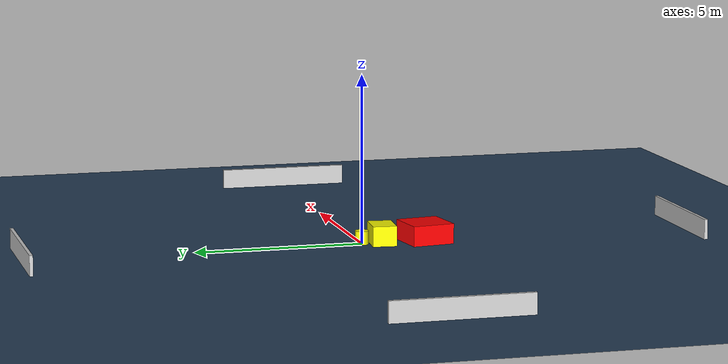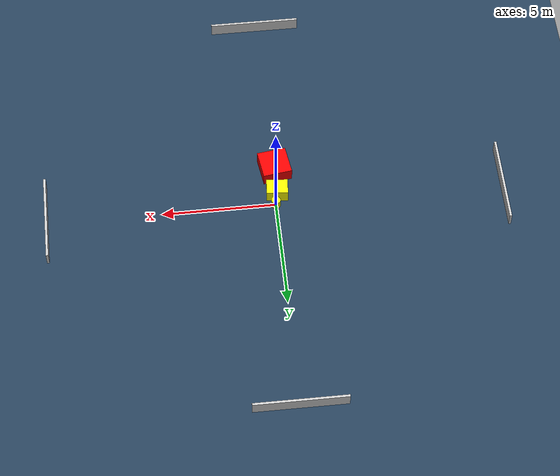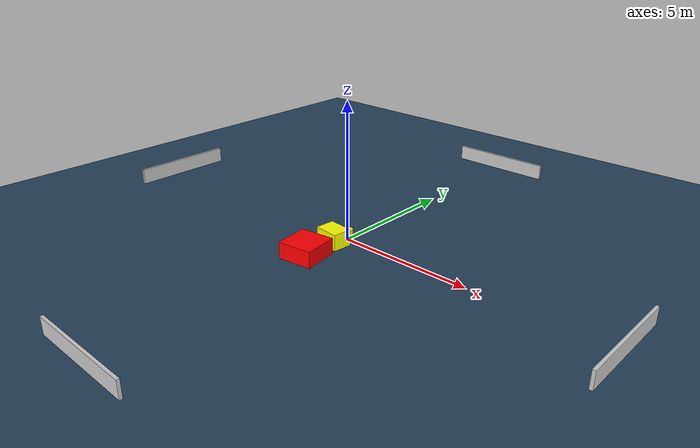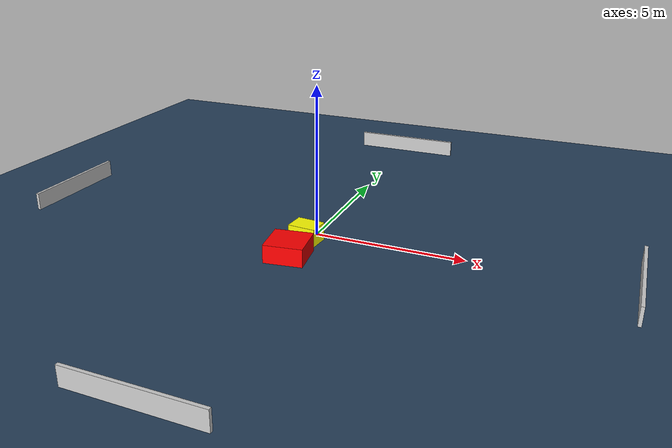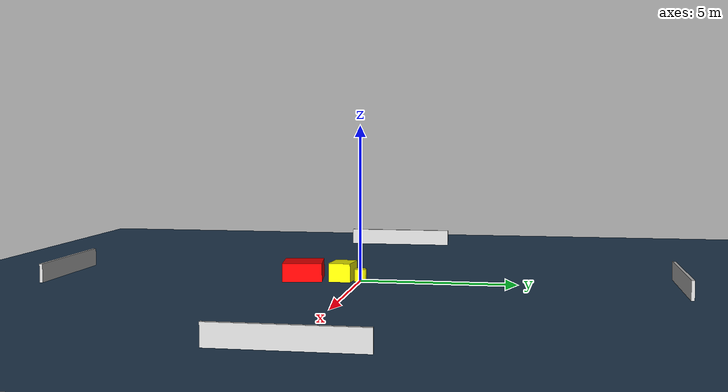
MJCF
<?xml version="1.0" ?>
<mujoco model="generated_environment">
  <option timestep="0.01" integrator="RK4" cone="elliptic"/>
  <default>
    <geom density="1"/>
  </default>
  <asset>
    <texture builtin="gradient" height="3072" name="skybox" rgb1="0.3 0.5 0.7" rgb2="0 0 0" type="skybox" width="512"/>
    <texture builtin="checker" height="300" name="groundplane" rgb1="0.2 0.3 0.4" rgb2="0.1 0.2 0.3" type="2d" width="300"/>
    <material name="groundplane" reflectance="0.2" texrepeat="5 5" texture="groundplane"/>
  </asset>
  <worldbody>
    <light dir="0 0 -1" directional="true" pos="0 0 1.5"/>
    <geom condim="3" friction="0.5 0.005 0.001" material="groundplane" name="floor" pos="0 0 0" size="0 0 0.05" type="plane"/>
    <body name="walls">
      <geom name="wall_1" condim="4" pos="-10.0 0.0 0.3" rgba="0.800000011920929 0.800000011920929 0.800000011920929 1.0" size="0.05 2.0 0.3" type="box"/>
      <geom name="wall_2" condim="4" pos="10.0 0.0 0.3" rgba="0.800000011920929 0.800000011920929 0.800000011920929 1.0" size="0.05 2.0 0.3" type="box"/>
      <geom name="wall_3" condim="4" pos="0.0 -10.0 0.3" rgba="0.800000011920929 0.800000011920929 0.800000011920929 1.0" size="2.0 0.05 0.3" type="box"/>
      <geom name="wall_4" condim="4" pos="0.0 10.0 0.3" rgba="0.800000011920929 0.800000011920929 0.800000011920929 1.0" size="2.0 0.05 0.3" type="box"/>
    </body>
    <body name="robot">
      <joint name="joint_x" type="slide" pos="0 0 0" axis="1 0 0"/>
      <joint name="joint_y" type="slide" pos="0 0 0" axis="0 1 0"/>
      <geom name="robot" type="cylinder" pos="0.0 0.0 0.2" size="0.2 0.2 0.0" mass="5.0" friction="1.0 0.005 0.0001" condim="4" rgba="1.0 1.0 0.0 1.0"/>
    </body>
    <body name="obstacle_1_movable">
      <geom name="obstacle_1_movable" condim="4" pos="-0.10878090811170611 -0.5848245789033868 0.3" euler="0 0 85.19817774621114" friction="0.0 0.005 0.001" rgba="1.0 1.0 0.0 1.0" size="0.35666827368193477 0.46761974846718807 0.3" type="box" mass="0.1"/>
      <joint type="free"/>
    </body>
    <body name="obstacle_2_static">
      <geom name="obstacle_2_static" condim="4" pos="-0.12320798009627117 -1.8948681765692033 0.3" euler="0 0 8.087198559585635" friction="0.0 0.005 0.001" rgba="1.0 0.0 0.0 1.0" size="0.6354570385295255 0.6372266003942254 0.3" type="box"/>
    </body>
  </worldbody>
  <actuator>
    <motor name="actuator_x" joint="joint_x" gear="1" ctrlrange="-1 1"/>
    <motor name="actuator_y" joint="joint_y" gear="1" ctrlrange="-1 1"/>
  </actuator>
</mujoco>
